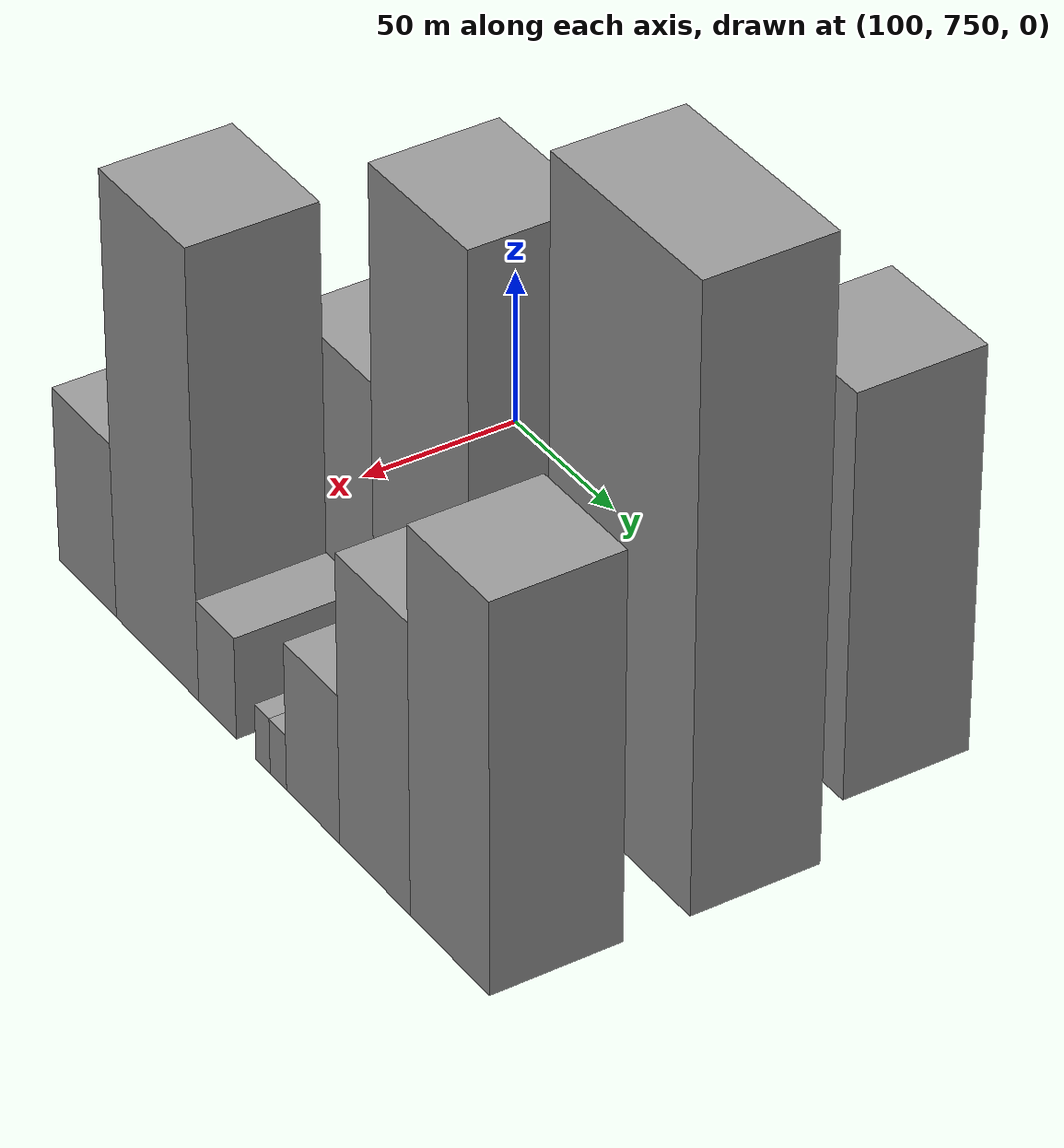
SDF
<sdf version="1.6">
 <world name="default">
  <model name="building_47">
   <static>1</static>
   <pose>100.0000 754.8918 0 0.000000 0.000000 0.000000</pose>
   <link name="link">
    <pose>0 0 33.00 0 0 0</pose>
    <collision name="collision"><geometry><box><size>40.0000 38.6050 66.0000</size></box></geometry></collision>
    <visual name="visual">
     <cast_shadows>0</cast_shadows>
     <geometry><box><size>40.0000 38.6050 66.0000</size></box></geometry>
     <material>
      <script>
       <uri>model://grey_wall/materials/scripts</uri>
       <uri>model://grey_wall/materials/textures</uri>
       <name>vrc/grey_wall</name>
      </script>
     </material>
    </visual>
   </link>
  </model>
  <model name="building_48">
   <static>1</static>
   <pose>100.0000 790.8242 0 0.000000 0.000000 0.000000</pose>
   <link name="link">
    <pose>0 0 48.00 0 0 0</pose>
    <collision name="collision"><geometry><box><size>40.0000 33.2598 96.0000</size></box></geometry></collision>
    <visual name="visual">
     <cast_shadows>0</cast_shadows>
     <geometry><box><size>40.0000 33.2598 96.0000</size></box></geometry>
     <material>
      <script>
       <uri>model://grey_wall/materials/scripts</uri>
       <uri>model://grey_wall/materials/textures</uri>
       <name>vrc/grey_wall</name>
      </script>
     </material>
    </visual>
   </link>
  </model>
  <model name="building_49">
   <static>1</static>
   <pose>100.0000 815.8754 0 0.000000 0.000000 0.000000</pose>
   <link name="link">
    <pose>0 0 15.00 0 0 0</pose>
    <collision name="collision"><geometry><box><size>40.0000 16.8427 30.0000</size></box></geometry></collision>
    <visual name="visual">
     <cast_shadows>0</cast_shadows>
     <geometry><box><size>40.0000 16.8427 30.0000</size></box></geometry>
     <material>
      <script>
       <uri>model://grey_wall/materials/scripts</uri>
       <uri>model://grey_wall/materials/textures</uri>
       <name>vrc/grey_wall</name>
      </script>
     </material>
    </visual>
   </link>
  </model>
  <model name="building_50">
   <static>1</static>
   <pose>100.0000 828.7711 0 0.000000 0.000000 0.000000</pose>
   <link name="link">
    <pose>0 0 9.00 0 0 0</pose>
    <collision name="collision"><geometry><box><size>40.0000 8.9487 18.0000</size></box></geometry></collision>
    <visual name="visual">
     <cast_shadows>0</cast_shadows>
     <geometry><box><size>40.0000 8.9487 18.0000</size></box></geometry>
     <material>
      <script>
       <uri>model://grey_wall/materials/scripts</uri>
       <uri>model://grey_wall/materials/textures</uri>
       <name>vrc/grey_wall</name>
      </script>
     </material>
    </visual>
   </link>
  </model>
  <model name="building_51">
   <static>1</static>
   <pose>100.0000 848.8117 0 0.000000 0.000000 0.000000</pose>
   <link name="link">
    <pose>0 0 16.50 0 0 0</pose>
    <collision name="collision"><geometry><box><size>40.0000 17.1325 33.0000</size></box></geometry></collision>
    <visual name="visual">
     <cast_shadows>0</cast_shadows>
     <geometry><box><size>40.0000 17.1325 33.0000</size></box></geometry>
     <material>
      <script>
       <uri>model://grey_wall/materials/scripts</uri>
       <uri>model://grey_wall/materials/textures</uri>
       <name>vrc/grey_wall</name>
      </script>
     </material>
    </visual>
   </link>
  </model>
  <model name="building_52">
   <static>1</static>
   <pose>100.0000 877.6460 0 0.000000 0.000000 0.000000</pose>
   <link name="link">
    <pose>0 0 39.00 0 0 0</pose>
    <collision name="collision"><geometry><box><size>40.0000 40.5361 78.0000</size></box></geometry></collision>
    <visual name="visual">
     <cast_shadows>0</cast_shadows>
     <geometry><box><size>40.0000 40.5361 78.0000</size></box></geometry>
     <material>
      <script>
       <uri>model://grey_wall/materials/scripts</uri>
       <uri>model://grey_wall/materials/textures</uri>
       <name>vrc/grey_wall</name>
      </script>
     </material>
    </visual>
   </link>
  </model>
  <model name="building_53">
   <static>1</static>
   <pose>100.0000 919.0583 0 0.000000 0.000000 0.000000</pose>
   <link name="link">
    <pose>0 0 64.50 0 0 0</pose>
    <collision name="collision"><geometry><box><size>40.0000 42.2884 129.0000</size></box></geometry></collision>
    <visual name="visual">
     <cast_shadows>0</cast_shadows>
     <geometry><box><size>40.0000 42.2884 129.0000</size></box></geometry>
     <material>
      <script>
       <uri>model://grey_wall/materials/scripts</uri>
       <uri>model://grey_wall/materials/textures</uri>
       <name>vrc/grey_wall</name>
      </script>
     </material>
    </visual>
   </link>
  </model>
  <model name="building_107">
   <static>1</static>
   <pose>160.0000 783.7602 0 0.000000 0.000000 0.000000</pose>
   <link name="link">
    <pose>0 0 37.50 0 0 0</pose>
    <collision name="collision"><geometry><box><size>40.0000 42.0301 75.0000</size></box></geometry></collision>
    <visual name="visual">
     <cast_shadows>0</cast_shadows>
     <geometry><box><size>40.0000 42.0301 75.0000</size></box></geometry>
     <material>
      <script>
       <uri>model://grey_wall/materials/scripts</uri>
       <uri>model://grey_wall/materials/textures</uri>
       <name>vrc/grey_wall</name>
      </script>
     </material>
    </visual>
   </link>
  </model>
  <model name="building_108">
   <static>1</static>
   <pose>160.0000 828.8550 0 0.000000 0.000000 0.000000</pose>
   <link name="link">
    <pose>0 0 72.00 0 0 0</pose>
    <collision name="collision"><geometry><box><size>40.0000 48.1595 144.0000</size></box></geometry></collision>
    <visual name="visual">
     <cast_shadows>0</cast_shadows>
     <geometry><box><size>40.0000 48.1595 144.0000</size></box></geometry>
     <material>
      <script>
       <uri>model://grey_wall/materials/scripts</uri>
       <uri>model://grey_wall/materials/textures</uri>
       <name>vrc/grey_wall</name>
      </script>
     </material>
    </visual>
   </link>
  </model>
  <model name="building_109">
   <static>1</static>
   <pose>160.0000 857.3793 0 0.000000 0.000000 0.000000</pose>
   <link name="link">
    <pose>0 0 10.50 0 0 0</pose>
    <collision name="collision"><geometry><box><size>40.0000 8.8892 21.0000</size></box></geometry></collision>
    <visual name="visual">
     <cast_shadows>0</cast_shadows>
     <geometry><box><size>40.0000 8.8892 21.0000</size></box></geometry>
     <material>
      <script>
       <uri>model://grey_wall/materials/scripts</uri>
       <uri>model://grey_wall/materials/textures</uri>
       <name>vrc/grey_wall</name>
      </script>
     </material>
    </visual>
   </link>
  </model>
  <model name="building_110">
   <static>1</static>
   <pose>160.0000 876.1584 0 0.000000 0.000000 0.000000</pose>
   <link name="link">
    <pose>0 0 13.50 0 0 0</pose>
    <collision name="collision"><geometry><box><size>40.0000 12.6690 27.0000</size></box></geometry></collision>
    <visual name="visual">
     <cast_shadows>0</cast_shadows>
     <geometry><box><size>40.0000 12.6690 27.0000</size></box></geometry>
     <material>
      <script>
       <uri>model://grey_wall/materials/scripts</uri>
       <uri>model://grey_wall/materials/textures</uri>
       <name>vrc/grey_wall</name>
      </script>
     </material>
    </visual>
   </link>
  </model>
  <model name="building_111">
   <static>1</static>
   <pose>160.0000 925.1419 0 0.000000 0.000000 0.000000</pose>
   <link name="link">
    <pose>0 0 97.50 0 0 0</pose>
    <collision name="collision"><geometry><box><size>40.0000 67.2980 195.0000</size></box></geometry></collision>
    <visual name="visual">
     <cast_shadows>0</cast_shadows>
     <geometry><box><size>40.0000 67.2980 195.0000</size></box></geometry>
     <material>
      <script>
       <uri>model://grey_wall/materials/scripts</uri>
       <uri>model://grey_wall/materials/textures</uri>
       <name>vrc/grey_wall</name>
      </script>
     </material>
    </visual>
   </link>
  </model>
  <model name="building_160">
   <static>1</static>
   <pose>220.0000 754.4085 0 0.000000 0.000000 0.000000</pose>
   <link name="link">
    <pose>0 0 28.50 0 0 0</pose>
    <collision name="collision"><geometry><box><size>40.0000 31.1271 57.0000</size></box></geometry></collision>
    <visual name="visual">
     <cast_shadows>0</cast_shadows>
     <geometry><box><size>40.0000 31.1271 57.0000</size></box></geometry>
     <material>
      <script>
       <uri>model://grey_wall/materials/scripts</uri>
       <uri>model://grey_wall/materials/textures</uri>
       <name>vrc/grey_wall</name>
      </script>
     </material>
    </visual>
   </link>
  </model>
  <model name="building_161">
   <static>1</static>
   <pose>220.0000 791.8838 0 0.000000 0.000000 0.000000</pose>
   <link name="link">
    <pose>0 0 72.00 0 0 0</pose>
    <collision name="collision"><geometry><box><size>40.0000 43.8234 144.0000</size></box></geometry></collision>
    <visual name="visual">
     <cast_shadows>0</cast_shadows>
     <geometry><box><size>40.0000 43.8234 144.0000</size></box></geometry>
     <material>
      <script>
       <uri>model://grey_wall/materials/scripts</uri>
       <uri>model://grey_wall/materials/textures</uri>
       <name>vrc/grey_wall</name>
      </script>
     </material>
    </visual>
   </link>
  </model>
  <model name="building_162">
   <static>1</static>
   <pose>220.0000 823.6153 0 0.000000 0.000000 0.000000</pose>
   <link name="link">
    <pose>0 0 16.50 0 0 0</pose>
    <collision name="collision"><geometry><box><size>40.0000 19.6396 33.0000</size></box></geometry></collision>
    <visual name="visual">
     <cast_shadows>0</cast_shadows>
     <geometry><box><size>40.0000 19.6396 33.0000</size></box></geometry>
     <material>
      <script>
       <uri>model://grey_wall/materials/scripts</uri>
       <uri>model://grey_wall/materials/textures</uri>
       <name>vrc/grey_wall</name>
      </script>
     </material>
    </visual>
   </link>
  </model>
  <model name="building_163">
   <static>1</static>
   <pose>220.0000 847.0999 0 0.000000 0.000000 0.000000</pose>
   <link name="link">
    <pose>0 0 9.00 0 0 0</pose>
    <collision name="collision"><geometry><box><size>40.0000 7.3296 18.0000</size></box></geometry></collision>
    <visual name="visual">
     <cast_shadows>0</cast_shadows>
     <geometry><box><size>40.0000 7.3296 18.0000</size></box></geometry>
     <material>
      <script>
       <uri>model://grey_wall/materials/scripts</uri>
       <uri>model://grey_wall/materials/textures</uri>
       <name>vrc/grey_wall</name>
      </script>
     </material>
    </visual>
   </link>
  </model>
  <model name="building_164">
   <static>1</static>
   <pose>220.0000 854.9208 0 0.000000 0.000000 0.000000</pose>
   <link name="link">
    <pose>0 0 9.00 0 0 0</pose>
    <collision name="collision"><geometry><box><size>40.0000 8.3123 18.0000</size></box></geometry></collision>
    <visual name="visual">
     <cast_shadows>0</cast_shadows>
     <geometry><box><size>40.0000 8.3123 18.0000</size></box></geometry>
     <material>
      <script>
       <uri>model://grey_wall/materials/scripts</uri>
       <uri>model://grey_wall/materials/textures</uri>
       <name>vrc/grey_wall</name>
      </script>
     </material>
    </visual>
   </link>
  </model>
  <model name="building_165">
   <static>1</static>
   <pose>220.0000 872.4205 0 0.000000 0.000000 0.000000</pose>
   <link name="link">
    <pose>0 0 24.00 0 0 0</pose>
    <collision name="collision"><geometry><box><size>40.0000 26.6870 48.0000</size></box></geometry></collision>
    <visual name="visual">
     <cast_shadows>0</cast_shadows>
     <geometry><box><size>40.0000 26.6870 48.0000</size></box></geometry>
     <material>
      <script>
       <uri>model://grey_wall/materials/scripts</uri>
       <uri>model://grey_wall/materials/textures</uri>
       <name>vrc/grey_wall</name>
      </script>
     </material>
    </visual>
   </link>
  </model>
  <model name="building_166">
   <static>1</static>
   <pose>220.0000 903.0602 0 0.000000 0.000000 0.000000</pose>
   <link name="link">
    <pose>0 0 46.50 0 0 0</pose>
    <collision name="collision"><geometry><box><size>40.0000 34.5925 93.0000</size></box></geometry></collision>
    <visual name="visual">
     <cast_shadows>0</cast_shadows>
     <geometry><box><size>40.0000 34.5925 93.0000</size></box></geometry>
     <material>
      <script>
       <uri>model://grey_wall/materials/scripts</uri>
       <uri>model://grey_wall/materials/textures</uri>
       <name>vrc/grey_wall</name>
      </script>
     </material>
    </visual>
   </link>
  </model>
  <model name="building_167">
   <static>1</static>
   <pose>220.0000 939.2736 0 0.000000 0.000000 0.000000</pose>
   <link name="link">
    <pose>0 0 61.50 0 0 0</pose>
    <collision name="collision"><geometry><box><size>40.0000 37.8342 123.0000</size></box></geometry></collision>
    <visual name="visual">
     <cast_shadows>0</cast_shadows>
     <geometry><box><size>40.0000 37.8342 123.0000</size></box></geometry>
     <material>
      <script>
       <uri>model://grey_wall/materials/scripts</uri>
       <uri>model://grey_wall/materials/textures</uri>
       <name>vrc/grey_wall</name>
      </script>
     </material>
    </visual>
   </link>
  </model>
 </world>
</sdf>
